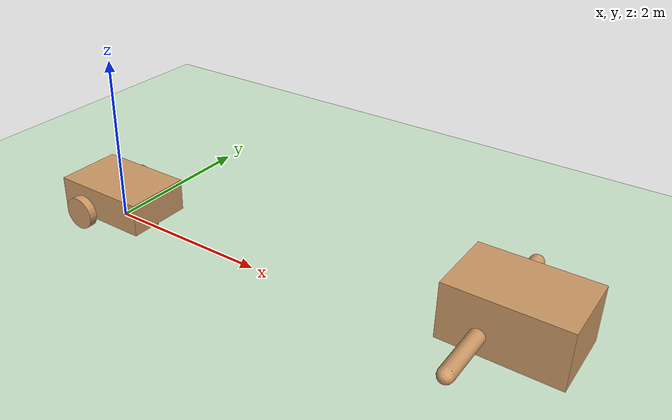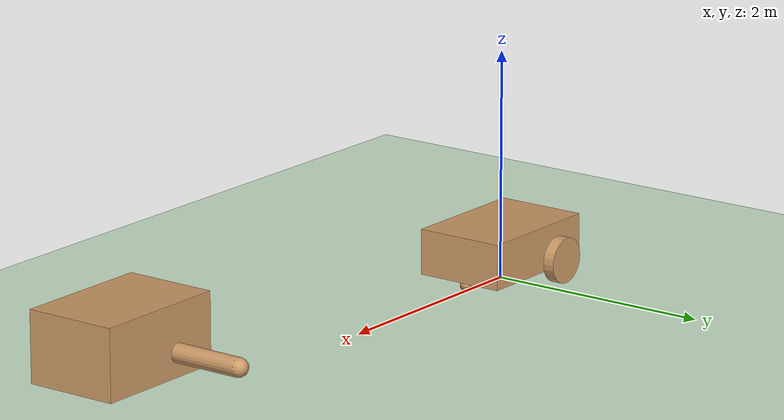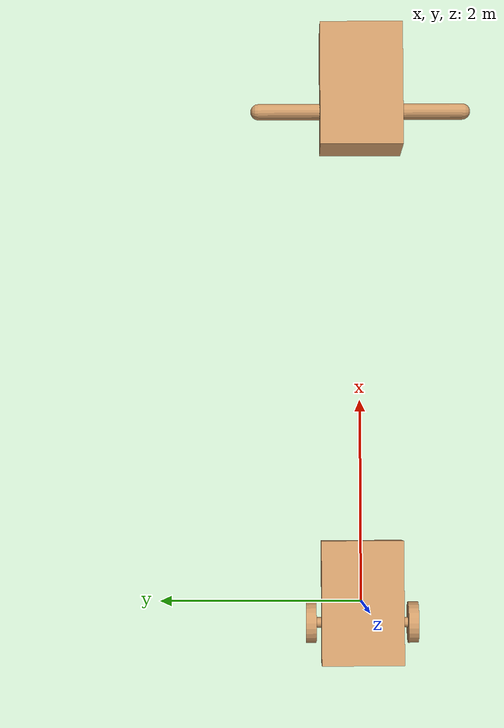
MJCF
<?xml version="1.0" encoding="utf-8"?>
<mujoco model="ant">
	<compiler angle="degree" coordinate="local" inertiafromgeom="true"/>
	<option integrator="RK4" timestep="0.01"/>
	<custom>
		<numeric name="init_qpos" data="0.0 0.0 0.1 1.0 0.0 0.0 0.0 0.0 1.0 0.0 -1.0 0.0 -1.0 0.0 1.0"/>
	</custom>
	<default>
		<joint armature="1" damping="1" limited="true"/>
		<geom conaffinity="0" condim="3" density="5.0" friction="1 0.5 0.5" margin="0.01" rgba="0.8 0.6 0.4 1"/>
	</default>
	<asset>
		<texture builtin="gradient" height="100" rgb1="1 1 1" rgb2="0 0 0" type="skybox" width="100"/>
		<texture builtin="flat" height="1278" mark="cross" markrgb="1 1 1" name="texgeom" random="0.01" rgb1="0.8 0.6 0.4" rgb2="0.8 0.6 0.4" type="cube" width="127"/>
		<texture builtin="checker" height="100" name="texplane" rgb1="0 0 0" rgb2="0.8 0.8 0.8" type="2d" width="100"/>
		<material name="MatPlane" reflectance="0.5" shininess="1" specular="1" texrepeat="60 60" texture="texplane"/>
		<material name="geom" texture="texgeom" texuniform="true"/>
	</asset>
	<worldbody>
		<light cutoff="100" diffuse="1 1 1" dir="0 0 -1.3" directional="true" exponent="1" pos="0 0 1.3" specular="0.1 0.1 0.1"/>
		<geom conaffinity="1" condim="3" material="MatPlane" name="floor" pos="0 0 0" rgba="0.8 0.9 0.8 1" size="40 40 40" type="plane"/>
		<body name="torso2" pos="5 0 0.75">
			<camera mode="trackcom" name="track2" pos="0 -3 0.3" xyaxes="1 0 0 0 0 2"/>
			<geom name="torso_geom2" pos="0 0 0" size="0.6 0.4 0.3" type="box"/>
			<joint armature="0" damping="0" limited="false" margin="0.01" name="root2" pos="0 0 0" type="free"/>
			<body name="left_leg" pos="-0.2 -0.2 -0.1" euler="0 0 90">
				<geom fromto="0 0 0 0.5 0 0" name="aux_geom_front_left_leg" size="0.08" type="capsule"/>
				<body name="aux_body_front_left_leg" pos="0.2 0 0">
					<joint axis="0 0 1" name="hip_joint_front_left_leg" pos="0.0 0.0 0.0" range="-30 30" type="hinge"/>
					<geom fromto="0.0 0.0 0.0 0.4 0.0 0.0" name="leg_geom_front_left_leg" size="0.08" type="capsule"/>
					<body name="ankle_body_front_left_leg" pos="0.4 0.0 0">
						<joint axis="0 1 0" name="ankle_joint_front_left_leg" pos="0.0 0.0 0.0" range="30 70" type="hinge"/>
						<geom fromto="0.0 0.0 0.0 0.6 0.0 0.0" name="ankle_geom_front_left_leg" size="0.08" type="capsule"/>
					</body>
				</body>
			</body>

			<body name="right_leg" pos="-0.2 0.2 -0.1" euler="0 0 270">
				<geom fromto="0 0 0 0.5 0 0" name="aux_geom_back_right_leg" size="0.08" type="capsule"/>
				<body name="aux_body_back_right_leg" pos="0.2 0 0">
					<joint axis="0 0 1" name="hip_joint_back_right_leg" pos="0.0 0.0 0.0" range="-30 30" type="hinge"/>
					<geom fromto="0.0 0.0 0.0 0.4 0.0 0.0" name="leg_geom_back_right_leg" size="0.08" type="capsule"/>
					<body name="ankle_body_back_right_leg" pos="0.4 0.0 0">
						<joint axis="0 1 0" name="ankle_joint_back_right_leg" pos="0.0 0.0 0.0" range="30 70" type="hinge"/>
						<geom fromto="0.0 0.0 0.0 0.6 0.0 0.0" name="ankle_geom_back_right_leg" size="0.08" type="capsule"/>
					</body>
				</body>
			</body>
		</body>

		<body name="torso" >
			<camera mode="trackcom" name="track" pos="0 -3 0.3" xyaxes="1 0 0 0 0 2"/>
			<geom name="torso_geom" pos="0 0 0.3" size="0.6 0.4 0.2" type="box"/>
			<joint armature="0" damping="0" limited="false"  name="root" type="free"/>
			<body name="front_connect">
				<geom fromto="0.5 0 0.1 0.5 0 0.05" name="front_geom_connect" size="0.05" type="capsule"/>
				<body name="front_ball" pos="0.5 0 0.05" >
					<geom name="ball" size="0.05" type="sphere"/>
				</body>
			</body>

			<body name="right_shaft">
				<geom fromto="-0.2 0.5 0.2 -0.2 0.3 0.2" name="right_geom_shaft" size="0.05" type="capsule"/>
				<joint name="joint_torso_right_shaft" range="-30 30" type="hinge" axis = "-0.2 0.3 0.2"/>
				<body name="wheel_right">
					<geom name="wheel_right_geom" pos="-0.2 0.5 0.2"  size="0.2 0.05" type="cylinder" euler = '90 0 0'/>
				</body>
			</body>

			<body name="left_shaft">
				<geom fromto="-0.2 -0.5 0.2 -0.2 -0.3 0.2" name="left_geom_shaft" size="0.05" type="capsule"/>
				<joint name="joint_torso_left_shaft" range="-30 30" type="hinge" axis = "-0.2 -0.3 0.2"/>
				<body name="wheel_left" >
					<geom name="wheel_left_geom" pos="-0.2 -0.5 0.2"  size="0.2 0.05" type="cylinder" euler = '90 0 0'/>
				</body>
			</body>
		</body>

	</worldbody>
	<actuator>
		<position ctrllimited="true" ctrlrange="-1.0 1.0" gear = "150" joint = "hip_joint_front_left_leg"/>
		<position ctrllimited="true" ctrlrange="-1.0 1.0" gear = "150" joint = "hip_joint_back_right_leg"/>

	</actuator>
</mujoco>
